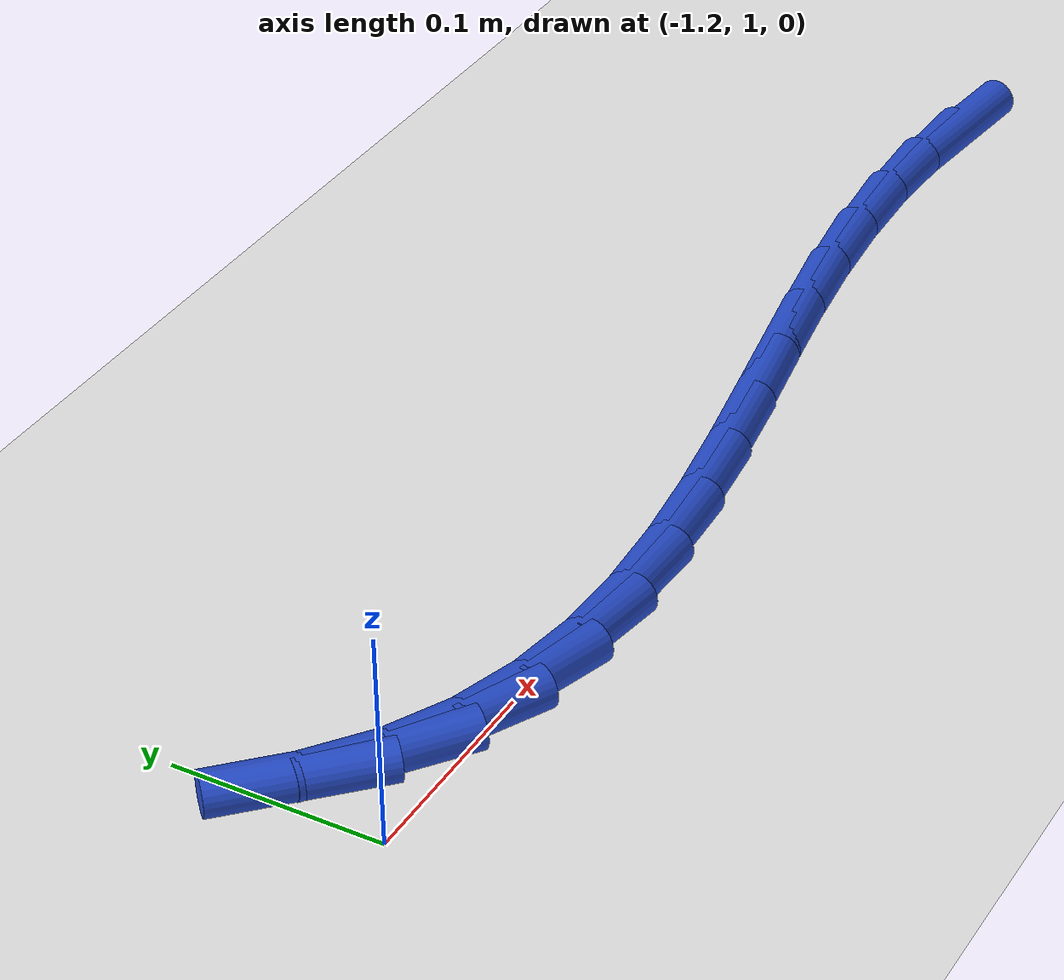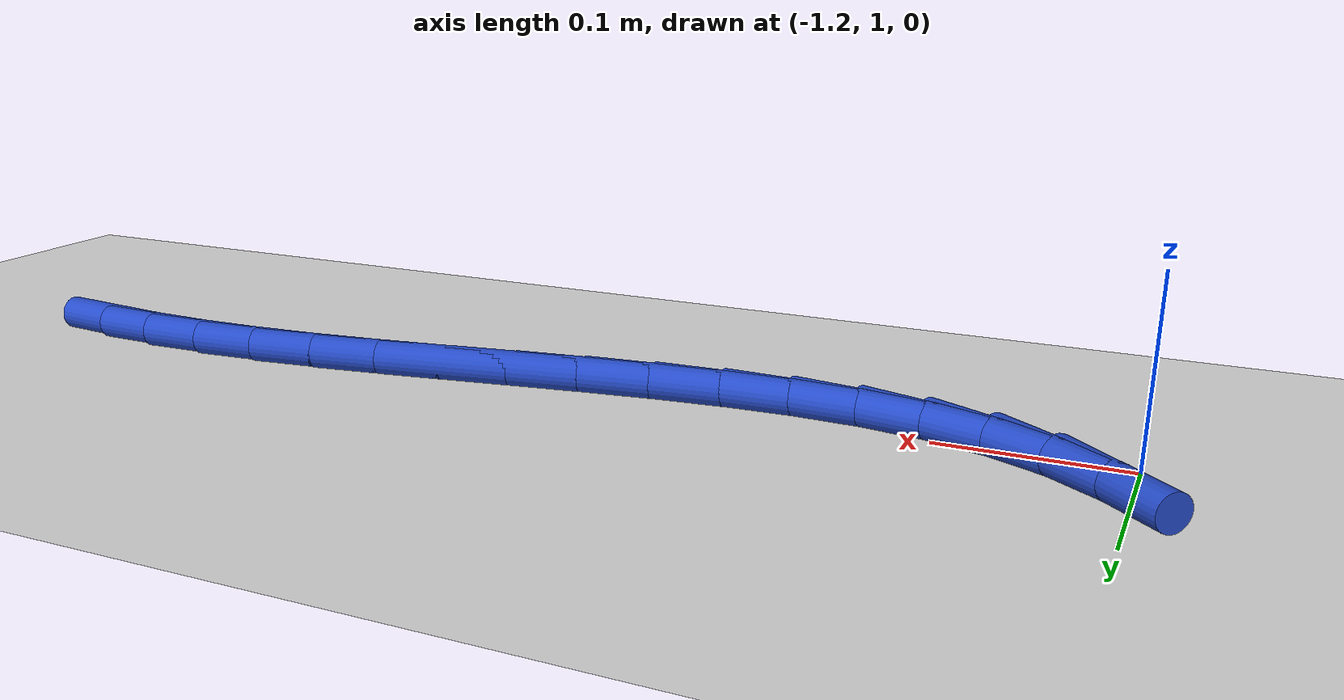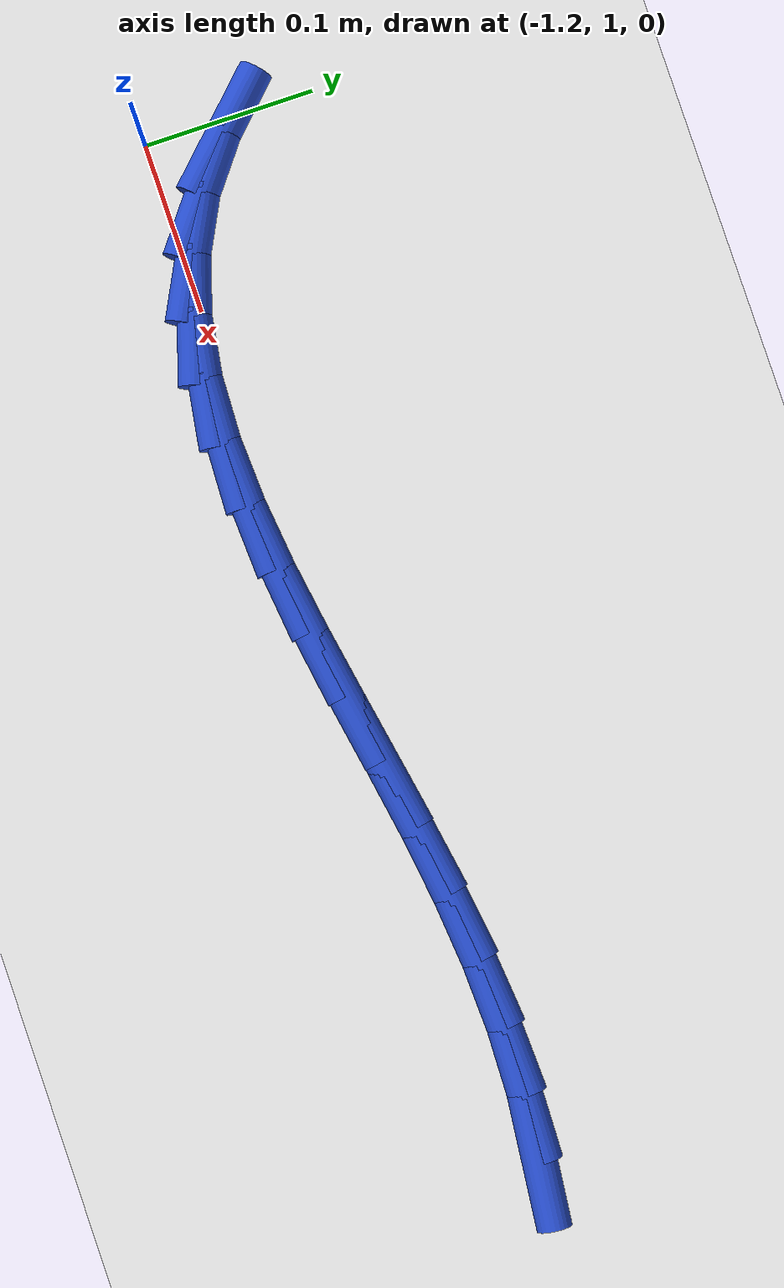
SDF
<sdf version="1.6">
 <world name="default">
  <model name="ground_plane">
   <static>1</static>
   <link name="link">
    <collision name="collision">
     <geometry><plane><normal>0 0 1</normal><size>100 100</size></plane></geometry>
     <surface><friction><ode><mu>100</mu><mu2>50</mu2></ode></friction></surface>
    </collision>
    <visual name="visual">
     <cast_shadows>0</cast_shadows>
     <geometry><plane><normal>0 0 1</normal><size>100 100</size></plane></geometry>
     <material>
      <script><uri>file://media/materials/scripts/gazebo.material</uri><name>Gazebo/WhiteGlow</name></script>
     </material>
    </visual>
   </link>
  </model>
  <model name="line">
   <link name="link_33">
    <pose>-0.5900483578545886 1.0273725667951425 0.01 0 1.57 -0.10797520691942922</pose>
    <collision name="collision">
     <geometry><cylinder><radius>0.01</radius><length>0.08</length></cylinder></geometry>
    </collision>
    <visual name="visual">
     <material>
      <script><name>Gazebo/Blue</name><uri>file://media/materials/scripts/gazebo.material</uri></script>
     </material>
     <geometry><cylinder><radius>0.01</radius><length>0.08</length></cylinder></geometry>
    </visual>
   </link>
   <link name="link_34">
    <pose>-0.6270413944280164 1.0313824931356246 0.01 0 1.57 -0.029477488322569353</pose>
    <collision name="collision">
     <geometry><cylinder><radius>0.01</radius><length>0.08</length></cylinder></geometry>
    </collision>
    <visual name="visual">
     <material>
      <script><name>Gazebo/Blue</name><uri>file://media/materials/scripts/gazebo.material</uri></script>
     </material>
     <geometry><cylinder><radius>0.01</radius><length>0.08</length></cylinder></geometry>
    </visual>
   </link>
   <link name="link_35">
    <pose>-0.6650028224899194 1.0325018249109297 0.01 0 1.57 0.03660391834432339</pose>
    <collision name="collision">
     <geometry><cylinder><radius>0.01</radius><length>0.08</length></cylinder></geometry>
    </collision>
    <visual name="visual">
     <material>
      <script><name>Gazebo/Blue</name><uri>file://media/materials/scripts/gazebo.material</uri></script>
     </material>
     <geometry><cylinder><radius>0.01</radius><length>0.08</length></cylinder></geometry>
    </visual>
   </link>
   <link name="link_36">
    <pose>-0.703824530471745 1.0310801632889777 0.01 0 1.57 0.09104654951064257</pose>
    <collision name="collision">
     <geometry><cylinder><radius>0.01</radius><length>0.08</length></cylinder></geometry>
    </collision>
    <visual name="visual">
     <material>
      <script><name>Gazebo/Blue</name><uri>file://media/materials/scripts/gazebo.material</uri></script>
     </material>
     <geometry><cylinder><radius>0.01</radius><length>0.08</length></cylinder></geometry>
    </visual>
   </link>
   <link name="link_37">
    <pose>-0.7433984068049408 1.0274671094376884 0.01 0 1.57 0.1347586860136338</pose>
    <collision name="collision">
     <geometry><cylinder><radius>0.01</radius><length>0.08</length></cylinder></geometry>
    </collision>
    <visual name="visual">
     <material>
      <script><name>Gazebo/Blue</name><uri>file://media/materials/scripts/gazebo.material</uri></script>
     </material>
     <geometry><cylinder><radius>0.01</radius><length>0.08</length></cylinder></geometry>
    </visual>
   </link>
   <link name="link_38">
    <pose>-0.7836153436980116 1.0220144814383636 0.01 0 1.57 0.1652870612479473</pose>
    <collision name="collision">
     <geometry><cylinder><radius>0.01</radius><length>0.08</length></cylinder></geometry>
    </collision>
    <visual name="visual">
     <material>
      <script><name>Gazebo/Blue</name><uri>file://media/materials/scripts/gazebo.material</uri></script>
     </material>
     <geometry><cylinder><radius>0.01</radius><length>0.08</length></cylinder></geometry>
    </visual>
   </link>
   <link name="link_39">
    <pose>-0.8242968758614666 1.0152284398983111 0.01 0 1.57 0.17826257744224713</pose>
    <collision name="collision">
     <geometry><cylinder><radius>0.01</radius><length>0.08</length></cylinder></geometry>
    </collision>
    <visual name="visual">
     <material>
      <script><name>Gazebo/Blue</name><uri>file://media/materials/scripts/gazebo.material</uri></script>
     </material>
     <geometry><cylinder><radius>0.01</radius><length>0.08</length></cylinder></geometry>
    </visual>
   </link>
   <link name="link_40">
    <pose>-0.8651511277795053 1.007867519303795 0.01 0 1.57 0.17389211119052903</pose>
    <collision name="collision">
     <geometry><cylinder><radius>0.01</radius><length>0.08</length></cylinder></geometry>
    </collision>
    <visual name="visual">
     <material>
      <script><name>Gazebo/Blue</name><uri>file://media/materials/scripts/gazebo.material</uri></script>
     </material>
     <geometry><cylinder><radius>0.01</radius><length>0.08</length></cylinder></geometry>
    </visual>
   </link>
   <link name="link_41">
    <pose>-0.9058757437073567 1.0007135759888834 0.01 0 1.57 0.15183083544688275</pose>
    <collision name="collision">
     <geometry><cylinder><radius>0.01</radius><length>0.08</length></cylinder></geometry>
    </collision>
    <visual name="visual">
     <material>
      <script><name>Gazebo/Blue</name><uri>file://media/materials/scripts/gazebo.material</uri></script>
     </material>
     <geometry><cylinder><radius>0.01</radius><length>0.08</length></cylinder></geometry>
    </visual>
   </link>
   <link name="link_42">
    <pose>-0.9461683679002486 0.994548466287645 0.01 0 1.57 0.11063364046974347</pose>
    <collision name="collision">
     <geometry><cylinder><radius>0.01</radius><length>0.08</length></cylinder></geometry>
    </collision>
    <visual name="visual">
     <material>
      <script><name>Gazebo/Blue</name><uri>file://media/materials/scripts/gazebo.material</uri></script>
     </material>
     <geometry><cylinder><radius>0.01</radius><length>0.08</length></cylinder></geometry>
    </visual>
   </link>
   <link name="link_43">
    <pose>-0.9857266446134115 0.9901540465341484 0.01 0 1.57 0.04777768936960683</pose>
    <collision name="collision">
     <geometry><cylinder><radius>0.01</radius><length>0.08</length></cylinder></geometry>
    </collision>
    <visual name="visual">
     <material>
      <script><name>Gazebo/Blue</name><uri>file://media/materials/scripts/gazebo.material</uri></script>
     </material>
     <geometry><cylinder><radius>0.01</radius><length>0.08</length></cylinder></geometry>
    </visual>
   </link>
   <link name="link_44">
    <pose>-1.0242482181020733 0.9883121730624618 0.01 0 1.57 -0.040119080579638734</pose>
    <collision name="collision">
     <geometry><cylinder><radius>0.01</radius><length>0.08</length></cylinder></geometry>
    </collision>
    <visual name="visual">
     <material>
      <script><name>Gazebo/Blue</name><uri>file://media/materials/scripts/gazebo.material</uri></script>
     </material>
     <geometry><cylinder><radius>0.01</radius><length>0.08</length></cylinder></geometry>
    </visual>
   </link>
   <link name="link_45">
    <pose>-1.0614307326214631 0.9898047022066538 0.01 0 1.57 -0.15652049418129263</pose>
    <collision name="collision">
     <geometry><cylinder><radius>0.01</radius><length>0.08</length></cylinder></geometry>
    </collision>
    <visual name="visual">
     <material>
      <script><name>Gazebo/Blue</name><uri>file://media/materials/scripts/gazebo.material</uri></script>
     </material>
     <geometry><cylinder><radius>0.01</radius><length>0.08</length></cylinder></geometry>
    </visual>
   </link>
   <link name="link_46">
    <pose>-1.09697183242681 0.9954134903007933 0.01 0 1.57 -0.30309467864322426</pose>
    <collision name="collision">
     <geometry><cylinder><radius>0.01</radius><length>0.08</length></cylinder></geometry>
    </collision>
    <visual name="visual">
     <material>
      <script><name>Gazebo/Blue</name><uri>file://media/materials/scripts/gazebo.material</uri></script>
     </material>
     <geometry><cylinder><radius>0.01</radius><length>0.08</length></cylinder></geometry>
    </visual>
   </link>
   <link name="link_47">
    <pose>-1.1305691617733429 1.0059203936789487 0.01 0 1.57 -0.47660868017897223</pose>
    <collision name="collision">
     <geometry><cylinder><radius>0.01</radius><length>0.08</length></cylinder></geometry>
    </collision>
    <visual name="visual">
     <material>
      <script><name>Gazebo/Blue</name><uri>file://media/materials/scripts/gazebo.material</uri></script>
     </material>
     <geometry><cylinder><radius>0.01</radius><length>0.08</length></cylinder></geometry>
    </visual>
   </link>
   <link name="link_48">
    <pose>-1.1619203649162904 1.0221072686751886 0.01 0 1.57 -0.6577895668542895</pose>
    <collision name="collision">
     <geometry><cylinder><radius>0.01</radius><length>0.08</length></cylinder></geometry>
    </collision>
    <visual name="visual">
     <material>
      <script><name>Gazebo/Blue</name><uri>file://media/materials/scripts/gazebo.material</uri></script>
     </material>
     <geometry><cylinder><radius>0.01</radius><length>0.08</length></cylinder></geometry>
    </visual>
   </link>
   <link name="link_49">
    <pose>-1.1908352684853498 1.0444460299907152 0.01 0 1.57 -0.7926781146108255</pose>
    <collision name="collision">
     <geometry><cylinder><radius>0.01</radius><length>0.08</length></cylinder></geometry>
    </collision>
    <visual name="visual">
     <material>
      <script><name>Gazebo/Blue</name><uri>file://media/materials/scripts/gazebo.material</uri></script>
     </material>
     <geometry><cylinder><radius>0.01</radius><length>0.08</length></cylinder></geometry>
    </visual>
   </link>
  </model>
 </world>
</sdf>
